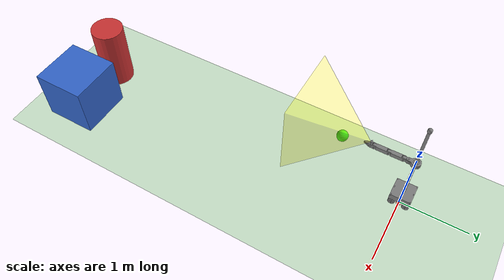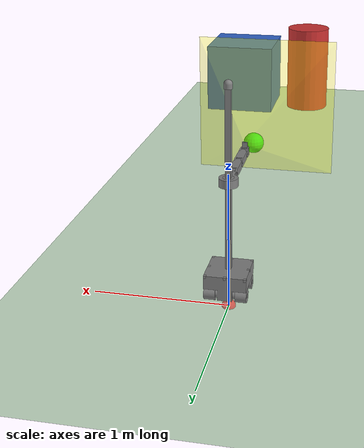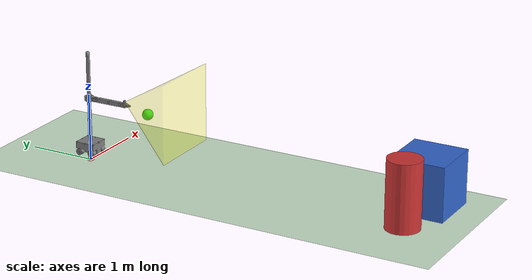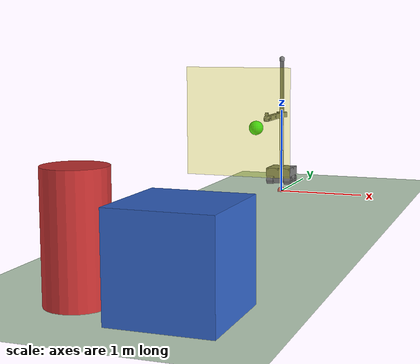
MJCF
<?xml version='1.0' encoding='utf-8'?>
<mujoco model="robot_RAMI_v1_urdf">
  <compiler angle="radian" />

  <asset>
    <!-- Sensor Visualization Materials and Meshes -->
    <material name="vis_camera" rgba="1 1 0 0.3" emission="1" />
    <material name="vis_ultrasonic" rgba="0 0.5 1 0.3" emission="1" />
    <mesh name="visual_pyramid_head" content_type="model/stl" file="../../robot_RAMI_v1_urdf_description/meshes/visual_pyramid.stl" scale="16.782 16.782 10" />
    <mesh name="visual_pyramid_gripper" content_type="model/stl" file="../../robot_RAMI_v1_urdf_description/meshes/visual_pyramid.stl" scale="1.154 1.154 1" />
    <mesh name="visual_cone_us" content_type="model/stl" file="../../robot_RAMI_v1_urdf_description/meshes/visual_cone.stl" scale="1.339 1.339 5" />

    <mesh name="base_link" content_type="model/stl" file="../../robot_RAMI_v1_urdf_description/meshes/base_link.stl" scale="0.001 0.001 0.001" />
    <mesh name="weel_left_front_1" content_type="model/stl" file="../../robot_RAMI_v1_urdf_description/meshes/weel_left_front_1.stl" scale="0.001 0.001 0.001" />
    <mesh name="weel_left_back_1" content_type="model/stl" file="../../robot_RAMI_v1_urdf_description/meshes/weel_left_back_1.stl" scale="0.001 0.001 0.001" />
    <mesh name="weel_right_front_1" content_type="model/stl" file="../../robot_RAMI_v1_urdf_description/meshes/weel_right_front_1.stl" scale="0.001 0.001 0.001" />
    <mesh name="weel_right_back_1" content_type="model/stl" file="../../robot_RAMI_v1_urdf_description/meshes/weel_right_back_1.stl" scale="0.001 0.001 0.001" />
    <mesh name="pillar_link_1" content_type="model/stl" file="../../robot_RAMI_v1_urdf_description/meshes/pillar_link_1.stl" scale="0.001 0.001 0.001" />
    <mesh name="lift_slide_link_1" content_type="model/stl" file="../../robot_RAMI_v1_urdf_description/meshes/lift_slide_link_1.stl" scale="0.001 0.001 0.001" />
    <mesh name="rotation_link_1" content_type="model/stl" file="../../robot_RAMI_v1_urdf_description/meshes/rotation_link_1.stl" scale="0.001 0.001 0.001" />
    <mesh name="arm_link_1_1" content_type="model/stl" file="../../robot_RAMI_v1_urdf_description/meshes/arm_link_1_1.stl" scale="0.001 0.001 0.001" />
    <mesh name="arm_link_2_1" content_type="model/stl" file="../../robot_RAMI_v1_urdf_description/meshes/arm_link_2_1.stl" scale="0.001 0.001 0.001" />
    <mesh name="arm_link_3_1" content_type="model/stl" file="../../robot_RAMI_v1_urdf_description/meshes/arm_link_3_1.stl" scale="0.001 0.001 0.001" />
    <mesh name="arm_link_4_1" content_type="model/stl" file="../../robot_RAMI_v1_urdf_description/meshes/arm_link_4_1.stl" scale="0.001 0.001 0.001" />
    <mesh name="arm_link_5_1" content_type="model/stl" file="../../robot_RAMI_v1_urdf_description/meshes/arm_link_5_1.stl" scale="0.001 0.001 0.001" />
    <mesh name="arm_link_6_1" content_type="model/stl" file="../../robot_RAMI_v1_urdf_description/meshes/arm_link_6_1.stl" scale="0.001 0.001 0.001" />
    <mesh name="depth_camera_1" content_type="model/stl" file="../../robot_RAMI_v1_urdf_description/meshes/depth_camera_1.stl" scale="0.001 0.001 0.001" />
    <mesh name="gripper_camera_1" content_type="model/stl" file="../../robot_RAMI_v1_urdf_description/meshes/gripper_camera_1.stl" scale="0.001 0.001 0.001" />
    <mesh name="ultrasonic_sensor_1_1" content_type="model/stl" file="../../robot_RAMI_v1_urdf_description/meshes/ultrasonic_sensor_1_1.stl" scale="0.001 0.001 0.001" />
    <mesh name="ultrasonic_sensor_2_1" content_type="model/stl" file="../../robot_RAMI_v1_urdf_description/meshes/ultrasonic_sensor_2_1.stl" scale="0.001 0.001 0.001" />
    <mesh name="ultrasonic_sensor_3_1" content_type="model/stl" file="../../robot_RAMI_v1_urdf_description/meshes/ultrasonic_sensor_3_1.stl" scale="0.001 0.001 0.001" />
    <mesh name="ultrasonic_sensor_4_1" content_type="model/stl" file="../../robot_RAMI_v1_urdf_description/meshes/ultrasonic_sensor_4_1.stl" scale="0.001 0.001 0.001" />
    <mesh name="ultrasonic_sensor_5_1" content_type="model/stl" file="../../robot_RAMI_v1_urdf_description/meshes/ultrasonic_sensor_5_1.stl" scale="0.001 0.001 0.001" />
    <mesh name="ultrasonic_sensor_6_1" content_type="model/stl" file="../../robot_RAMI_v1_urdf_description/meshes/ultrasonic_sensor_6_1.stl" scale="0.001 0.001 0.001" />
    <mesh name="ultrasonic_sensor_7_1" content_type="model/stl" file="../../robot_RAMI_v1_urdf_description/meshes/ultrasonic_sensor_7_1.stl" scale="0.001 0.001 0.001" />
    <mesh name="ultrasonic_sensor_8_1" content_type="model/stl" file="../../robot_RAMI_v1_urdf_description/meshes/ultrasonic_sensor_8_1.stl" scale="0.001 0.001 0.001" />
    <mesh name="imu_sensor_1" content_type="model/stl" file="../../robot_RAMI_v1_urdf_description/meshes/imu_sensor_1.stl" scale="0.001 0.001 0.001" />
  </asset>

  <worldbody>
    <!-- 시각적 IK 타겟 마커 (빨간 반투명 구체, mocap 바디로 설정하여 런타임 이동 가능) -->
    <body name="target_marker" pos="0 0 0" mocap="true">
        <geom type="sphere" size="0.05" rgba="1 0 0 0.5" contype="0" conaffinity="0" group="1"/>
    </body>
    <light pos="0 0 3" dir="0 0 -1" directional="true" castshadow="false" />
    <!-- 바닥 넓이를 2배로 확장 (size 5 -> 10) -->
    <geom name="floor" type="plane" size="10 10 0.05" rgba="0.8 0.9 0.8 1" />

    <!-- Test 18-1: 로봇 정면(Y축 음수 방향) 5m 거리에 임의의 객체 2개 생성 -->
    <!-- 참고: YOLOv8이 원색 기본 도형을 특정 객체(예: 스포츠 공, 물병, 박스 등)로 인식하는지 테스트합니다. -->
    <body name="test_object_cylinder" pos="0 -5 0.5">
        <freejoint />
        <geom type="cylinder" size="0.25 0.5" rgba="0.8 0.2 0.2 1" />
    </body>
    <body name="test_object_box" pos="0.8 -5 0.4">
        <freejoint />
        <geom type="box" size="0.4 0.4 0.4" rgba="0.2 0.4 0.8 1" />
    </body>

    <!-- Test 18-2: 로봇 정면 1m (Y=-1), 그리퍼 카메라 높이 근처에 떠 있는 작은 초록 공 -->
    <body name="test_object_sphere" pos="0 -1.0 0.88">
        <!-- freejoint가 없으므로 공중에 고정됨 -->
        <geom type="sphere" size="0.08" rgba="0.1 0.9 0.1 1" />
    </body>
    <body name="base_link" pos="0 0 0.085">
      <inertial pos="0 0 0.264356" mass="109.995" diaginertia="12.2755 12.1424 1.27632" />
      <joint name="root_x" type="slide" axis="1 0 0" damping="2" frictionloss="0.5" />
      <joint name="root_y" type="slide" axis="0 1 0" damping="2" frictionloss="0.5" />
      <joint name="root_z_rot" type="hinge" axis="0 0 1" damping="2" frictionloss="0.5" />
      <geom type="mesh" mesh="base_link" contype="0" conaffinity="0" />
      <!-- SLAM 벽면 충돌을 위한 베이스 프록시 (바닥과 닿지 않도록 Z 위치를 높임) -->
      <geom type="cylinder" size="0.25 0.3" pos="0 0 0.4" contype="1" conaffinity="1" rgba="0 1 0 0.0" group="3" />
      <geom type="mesh" mesh="pillar_link_1" contype="2" conaffinity="2" />
      <geom type="mesh" mesh="depth_camera_1" contype="0" conaffinity="0" />
      <geom type="mesh" mesh="ultrasonic_sensor_1_1" contype="0" conaffinity="0" />
      <geom type="mesh" mesh="ultrasonic_sensor_2_1" contype="0" conaffinity="0" />
      <geom type="mesh" mesh="ultrasonic_sensor_3_1" contype="0" conaffinity="0" />
      <geom type="mesh" mesh="ultrasonic_sensor_4_1" contype="0" conaffinity="0" />
      <geom type="mesh" mesh="ultrasonic_sensor_5_1" contype="0" conaffinity="0" />
      <geom type="mesh" mesh="ultrasonic_sensor_6_1" contype="0" conaffinity="0" />
      <geom type="mesh" mesh="ultrasonic_sensor_7_1" contype="0" conaffinity="0" />
      <geom type="mesh" mesh="ultrasonic_sensor_8_1" contype="0" conaffinity="0" />
      <geom type="mesh" mesh="imu_sensor_1" contype="0" conaffinity="0" />

      <!-- Sensors on base_link -->
      <camera name="head_camera" pos="0 0 1.515" xyaxes="-1 0 0 0 0 1" fovy="80" />
      <geom name="head_cam_vis" type="mesh" mesh="visual_pyramid_head" pos="0 0 1.515" xyaxes="-1 0 0 0 0 1" material="vis_camera" contype="0" conaffinity="0" group="5" />

      <site name="imu_site" pos="0 0 0.055" />

      <site name="us_site_1" pos="0.14 -0.14 0.195" zaxis="1 -1 0" />
      <geom name="us_vis_1" type="mesh" mesh="visual_cone_us" pos="0.14 -0.14 0.195" zaxis="1 -1 0" material="vis_ultrasonic" contype="0" conaffinity="0" group="5" />

      <site name="us_site_2" pos="0 -0.14 0.195" zaxis="0 -1 0" />
      <geom name="us_vis_2" type="mesh" mesh="visual_cone_us" pos="0 -0.14 0.195" zaxis="0 -1 0" material="vis_ultrasonic" contype="0" conaffinity="0" group="5" />

      <site name="us_site_3" pos="-0.14 -0.14 0.195" zaxis="-1 -1 0" />
      <geom name="us_vis_3" type="mesh" mesh="visual_cone_us" pos="-0.14 -0.14 0.195" zaxis="-1 -1 0" material="vis_ultrasonic" contype="0" conaffinity="0" group="5" />

      <site name="us_site_4" pos="-0.14 0 0.195" zaxis="-1 0 0" />
      <geom name="us_vis_4" type="mesh" mesh="visual_cone_us" pos="-0.14 0 0.195" zaxis="-1 0 0" material="vis_ultrasonic" contype="0" conaffinity="0" group="5" />

      <site name="us_site_5" pos="-0.14 0.14 0.195" zaxis="-1 1 0" />
      <geom name="us_vis_5" type="mesh" mesh="visual_cone_us" pos="-0.14 0.14 0.195" zaxis="-1 1 0" material="vis_ultrasonic" contype="0" conaffinity="0" group="5" />

      <site name="us_site_6" pos="0 0.14 0.195" zaxis="0 1 0" />
      <geom name="us_vis_6" type="mesh" mesh="visual_cone_us" pos="0 0.14 0.195" zaxis="0 1 0" material="vis_ultrasonic" contype="0" conaffinity="0" group="5" />

      <site name="us_site_7" pos="0.14 0.14 0.195" zaxis="1 1 0" />
      <geom name="us_vis_7" type="mesh" mesh="visual_cone_us" pos="0.14 0.14 0.195" zaxis="1 1 0" material="vis_ultrasonic" contype="0" conaffinity="0" group="5" />

      <site name="us_site_8" pos="0.14 0 0.195" zaxis="1 0 0" />
      <geom name="us_vis_8" type="mesh" mesh="visual_cone_us" pos="0.14 0 0.195" zaxis="1 0 0" material="vis_ultrasonic" contype="0" conaffinity="0" group="5" />

      <body name="weel_left_front_1" pos="0.15 -0.1 0.065">
        <inertial pos="-0.0404219 0 0" mass="4.43493" diaginertia="0.006057 0.005355 0.005355" />
        <joint name="weel_LF_joint" pos="0 0 0" axis="1 0 0" damping="0.1" frictionloss="0.01" />
        <geom pos="-0.15 0.1 -0.065" type="mesh" mesh="weel_left_front_1" contype="0" conaffinity="0" />
      </body>
      <body name="weel_left_back_1" pos="0.15 0.1 0.065">
        <inertial pos="-0.0404219 0 0" mass="4.43493" diaginertia="0.006057 0.005355 0.005355" />
        <joint name="weel_LB_joint" pos="0 0 0" axis="1 0 0" damping="0.1" frictionloss="0.01" />
        <geom pos="-0.15 -0.1 -0.065" type="mesh" mesh="weel_left_back_1" contype="0" conaffinity="0" />
      </body>
      <body name="weel_right_front_1" pos="-0.15 -0.1 0.065">
        <inertial pos="0.0404219 0 0" mass="4.43493" diaginertia="0.006057 0.005355 0.005355" />
        <joint name="weel_RF_joint" pos="0 0 0" axis="-1 0 0" damping="0.1" frictionloss="0.01" />
        <geom pos="0.15 0.1 -0.065" type="mesh" mesh="weel_right_front_1" contype="0" conaffinity="0" />
      </body>
      <body name="weel_right_back_1" pos="-0.15 0.1 0.065">
        <inertial pos="0.0404219 0 0" mass="4.43493" diaginertia="0.006057 0.005355 0.005355" />
        <joint name="weel_RB_joint" pos="0 0 0" axis="-1 0 0" damping="0.1" frictionloss="0.01" />
        <geom pos="0.15 -0.1 -0.065" type="mesh" mesh="weel_right_back_1" contype="0" conaffinity="0" />
      </body>
      <body name="lift_slide_link_1" pos="0 -0.02 0.865">
        <inertial pos="0 0.02 0" quat="0.5 0.5 -0.5 0.5" mass="1.6139" diaginertia="0.001693 0.001331 0.001331" />
        <joint name="lift_slide_joint" pos="0 0 0" axis="0 0 1" type="slide" range="-0.62 0.62" actuatorfrcrange="-10000 10000" damping="2000" frictionloss="20" />
        <geom pos="0 0.02 -0.865" quat="1 0 0 0" type="mesh" mesh="lift_slide_link_1" contype="0" conaffinity="0" />
        <body name="rotation_link_1" pos="0 0.02 0.03">
          <inertial pos="0 -0.0110341 -0.03" quat="0.5 0.5 -0.5 0.5" mass="4.89403" diaginertia="0.017752 0.012634 0.008358" />
          <joint name="rotation_joint" pos="0 0 0" axis="0 0 1" range="-3.14159 3.14159" actuatorfrcrange="-1000 1000" damping="50" frictionloss="10" />
          <geom pos="0 0 -0.895" quat="1 0 0 0" type="mesh" mesh="rotation_link_1" contype="3" conaffinity="3" />
          <body name="arm_link_1_1" pos="0 -0.1 0">
            <inertial pos="0 -0.03 -0.03" quat="0.707107 0.707107 0 0" mass="2.11686" diaginertia="0.002544 0.002544 0.000873" />
            <joint name="arm_joint_1" pos="0 0 0" axis="0 0 -1" range="-1.5708 1.5708" actuatorfrcrange="-1000 1000" damping="50" frictionloss="10" />
            <geom pos="0 0.1 -0.895" quat="1 0 0 0" type="mesh" mesh="arm_link_1_1" contype="3" conaffinity="3" />
            <body name="arm_link_2_1" pos="-0.03 -0.06 -0.03">
              <inertial pos="0.03 -0.110769 0" quat="0.5 0.5 -0.5 0.5" mass="5.47006" diaginertia="0.022162 0.022112 0.003232" />
              <joint name="arm_joint_2" pos="0 0 0" axis="-1 0 0" range="-1.5708 1.5708" actuatorfrcrange="-1000 1000" damping="50" frictionloss="10" />
              <geom pos="0.03 0.16 -0.865" quat="1 0 0 0" type="mesh" mesh="arm_link_2_1" contype="3" conaffinity="3" />
              <body name="arm_link_3_1" pos="0 -0.2 0">
                <inertial pos="0.03 -0.110769 0" quat="0.5 0.5 -0.5 0.5" mass="5.47006" diaginertia="0.022162 0.022112 0.003232" />
                <joint name="arm_joint_3" pos="0 0 0" axis="-1 0 0" range="-1.5708 1.5708" actuatorfrcrange="-1000 1000" damping="50" frictionloss="10" />
                <geom pos="0.03 0.36 -0.865" quat="1 0 0 0" type="mesh" mesh="arm_link_3_1" contype="3" conaffinity="3" />
                <body name="arm_link_4_1" pos="0 -0.2 0">
                  <inertial pos="0.03 -0.0162805 0" quat="0 0.707107 0 0.707107" mass="0.762492" diaginertia="0.000704 0.000593 0.000549" />
                  <joint name="arm_joint_4" pos="0 0 0" axis="-1 0 0" range="-1.5708 1.5708" actuatorfrcrange="-1000 1000" damping="50" frictionloss="10" />
                  <geom pos="0.03 0.56 -0.865" quat="1 0 0 0" type="mesh" mesh="arm_link_4_1" contype="3" conaffinity="3" />
                  <body name="arm_link_5_1" pos="0.03 -0.04 0">
                    <inertial pos="0.000593162 -0.0243798 0.0140847" quat="0.422271 0.905813 0.00466835 -0.0341912" mass="1.24729" diaginertia="0.00130091 0.00103352 0.000791539" />
                    <joint name="arm_joint_5" pos="0 0 0" axis="0 1 0" range="-3.14159 3.14159" actuatorfrcrange="-1000 1000" damping="50" frictionloss="10" />
                    <geom pos="0 0.6 -0.865" type="mesh" mesh="arm_link_5_1" contype="3" conaffinity="3" />
                    <geom pos="0 0.6 -0.865" quat="1 0 0 0" type="mesh" mesh="gripper_camera_1" />

                    <camera name="gripper_camera" pos="0 -0.015 0.05" xyaxes="-1 0 0 0 0 1" fovy="60" />
                    <geom name="gripper_cam_vis" type="mesh" mesh="visual_pyramid_gripper" pos="0 -0.015 0.05" xyaxes="-1 0 0 0 0 1" material="vis_camera" contype="0" conaffinity="0" group="2" />

                    <body name="arm_link_6_1" pos="-0.005 -0.03 -0.015">
                      <inertial pos="0.005 -0.0180282 0.00316455" quat="0.534551 0.462877 -0.462877 0.534551" mass="0.44765" diaginertia="0.0002929 0.000233 0.0001021" />
                      <joint name="arm_joint_6" pos="0 0 0" axis="1 0 0" range="0 1.5708" actuatorfrcrange="-1000 1000" damping="50" frictionloss="10" />
                      <geom pos="0.005 0.63 -0.85" quat="1 0 0 0" type="mesh" mesh="arm_link_6_1" contype="3" conaffinity="3" />
                    </body>
                  </body>
                </body>
              </body>
            </body>
          </body>
        </body>
      </body>
    </body>
  </worldbody>

  <actuator>
    <velocity name="base_vx" joint="root_x" kv="200" ctrlrange="-5 5" />
    <velocity name="base_vy" joint="root_y" kv="200" ctrlrange="-5 5" />
    <velocity name="base_wz" joint="root_z_rot" kv="100" ctrlrange="-5 5" />

    <velocity name="weel_lf" joint="weel_LF_joint" kv="2" ctrlrange="-50 50" />
    <velocity name="weel_lb" joint="weel_LB_joint" kv="2" ctrlrange="-50 50" />
    <velocity name="weel_rf" joint="weel_RF_joint" kv="2" ctrlrange="-50 50" />
    <velocity name="weel_rb" joint="weel_RB_joint" kv="2" ctrlrange="-50 50" />

    <!-- 리프트 및 암 조인트 Position Actuator -->
    <position name="act_lift" joint="lift_slide_joint" kp="50000" forcerange="-10000 10000" ctrlrange="-0.62 0.62" />
    <position name="act_rot" joint="rotation_joint" kp="10000" forcerange="-1000 1000" ctrlrange="-3.14159 3.14159" />
    <position name="act_arm1" joint="arm_joint_1" kp="15000" forcerange="-1000 1000" ctrlrange="-1.5708 1.5708" />
    <position name="act_arm2" joint="arm_joint_2" kp="15000" forcerange="-1000 1000" ctrlrange="-1.5708 1.5708" />
    <position name="act_arm3" joint="arm_joint_3" kp="15000" forcerange="-1000 1000" ctrlrange="-1.5708 1.5708" />
    <position name="act_arm4" joint="arm_joint_4" kp="15000" forcerange="-1000 1000" ctrlrange="-1.5708 1.5708" />
    <position name="act_arm5" joint="arm_joint_5" kp="15000" forcerange="-1000 1000" ctrlrange="-3.14159 3.14159" />
    <position name="act_arm6" joint="arm_joint_6" kp="15000" forcerange="-1000 1000" ctrlrange="0 1.5708" />
  </actuator>

  <sensor>
    <accelerometer name="imu_accel" site="imu_site" />
    <gyro name="imu_gyro" site="imu_site" />
    <rangefinder name="ultrasonic_sensor_1" site="us_site_1" />
    <rangefinder name="ultrasonic_sensor_2" site="us_site_2" />
    <rangefinder name="ultrasonic_sensor_3" site="us_site_3" />
    <rangefinder name="ultrasonic_sensor_4" site="us_site_4" />
    <rangefinder name="ultrasonic_sensor_5" site="us_site_5" />
    <rangefinder name="ultrasonic_sensor_6" site="us_site_6" />
    <rangefinder name="ultrasonic_sensor_7" site="us_site_7" />
    <rangefinder name="ultrasonic_sensor_8" site="us_site_8" />
  </sensor>

</mujoco>
